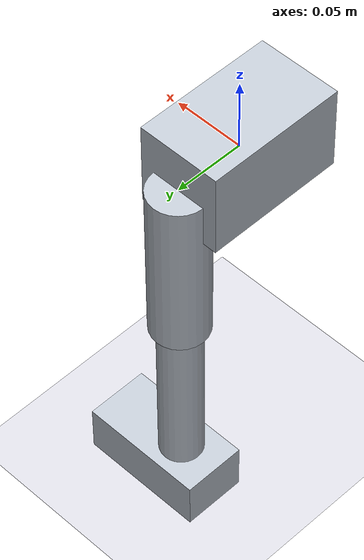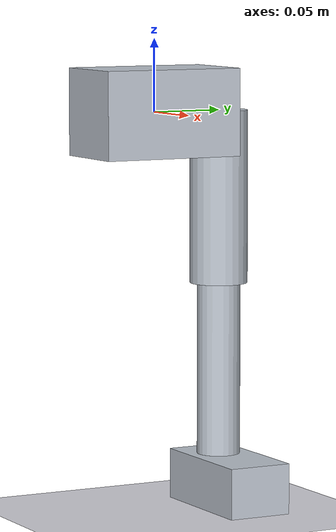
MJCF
<mujoco model="cara_left_leg">
  <compiler angle="radian" autolimits="true"/>
  <option gravity="0 0 0" timestep="0.002"/>   <!-- real g = 9.81; off for kinematic inspection -->

  <visual>
    <headlight diffuse="0.6 0.6 0.6" ambient="0.35 0.35 0.35" specular="0 0 0"/>
    <rgba haze="0.15 0.25 0.35 1"/>
    <global azimuth="130" elevation="-20"/>
  </visual>

  <default>
    <geom contype="0" conaffinity="0" group="2"/>
    <site type="sphere" size="0.006" group="3"/>
  </default>

  <worldbody>
    <light pos="0 0 1.5" dir="0 0 -1" diffuse="0.5 0.5 0.5"/>
    <geom name="floor" type="plane" size="0.6 0.6 0.02" pos="0 0 -0.275" rgba="0.85 0.85 0.88 1" group="1"/>

    <body name="pelvis" pos="0 0 0">
      <inertial pos="0 0 0" mass="0.6" diaginertia="0.00068 0.00036 0.00068"/>
      <geom type="box" size="0.03 0.05 0.03" pos="0 0 0" rgba="0.75 0.78 0.82 1"/>
      <site name="pelvis_frame" pos="0 0 0" rgba="0.9 0.5 0.2 1"/>
      <body name="l_thigh" pos="0 0.05 0">
        <joint name="l_hip_yaw" type="hinge" pos="0 0 0" axis="0 0 1" range="-0.79 0.79"/>
        <joint name="l_hip_roll" type="hinge" pos="0 0 0" axis="1 0 0" range="-0.52 0.61"/>
        <joint name="l_hip_pitch" type="hinge" pos="0 0 0" axis="0 1 0" range="-1.75 1.05"/>
        <inertial pos="0 0 -0.06" mass="0.15" diaginertia="0.00018 0.00018 3e-05"/>
        <geom type="cylinder" size="0.02 0.06" pos="0 0 -0.06" rgba="0.75 0.78 0.82 1"/>
        <site name="l_thigh_frame" pos="0 0 0" rgba="0.9 0.5 0.2 1"/>
        <body name="l_shin" pos="0 0 -0.12">
          <joint name="l_knee_pitch" type="hinge" pos="0 0 0" axis="0 1 0" range="0 2.36"/>
          <inertial pos="0 0 -0.06" mass="0.12" diaginertia="0.000144 0.000144 1.35e-05"/>
          <geom type="cylinder" size="0.015 0.06" pos="0 0 -0.06" rgba="0.75 0.78 0.82 1"/>
          <site name="l_shin_frame" pos="0 0 0" rgba="0.9 0.5 0.2 1"/>
          <body name="l_foot" pos="0 0 -0.12">
            <joint name="l_ankle_pitch" type="hinge" pos="0 0 0" axis="0 1 0" range="-0.87 0.61"/>
            <joint name="l_ankle_roll" type="hinge" pos="0 0 0" axis="1 0 0" range="-0.44 0.44"/>
            <inertial pos="0.015 0 -0.0175" mass="0.05" diaginertia="1.35416667e-05 3.88541667e-05 4.21875e-05"/>
            <geom type="box" size="0.045 0.0225 0.0175" pos="0.015 0 -0.0175" rgba="0.75 0.78 0.82 1"/>
            <site name="l_foot_frame" pos="0 0 0" rgba="0.9 0.5 0.2 1"/>
            <site name="l_foot_sole_center" pos="0.015 0 -0.035" rgba="0.2 0.7 0.4 1"/>
          </body>
        </body>
      </body>
    </body>
  </worldbody>
</mujoco>
